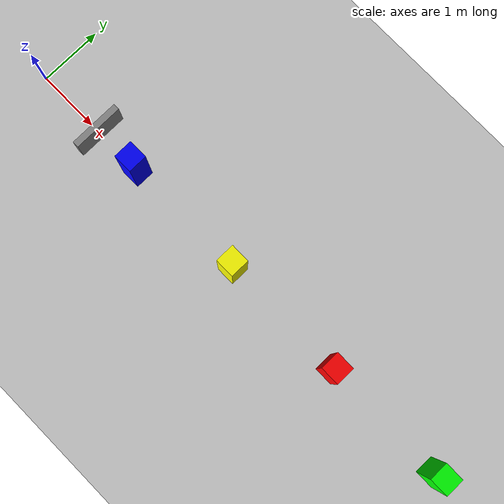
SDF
<?xml version="1.0" ?>
<sdf version="1.6">
  <world name="mvp_world">

    <include>
      <uri>model://ground_plane</uri>
    </include>

    <include>
      <uri>model://sun</uri>
    </include>

    <model name="left_sign">
      <static>true</static>
      <pose>2 0 0.5 0 0 0</pose>
      <link name="link">
        <visual name="visual">
          <geometry>
            <box>
              <size>0.3 0.3 1.0</size>
            </box>
          </geometry>
          <material>
            <ambient>0 0 1 1</ambient>
            <diffuse>0 0 1 1</diffuse>
          </material>
        </visual>
      </link>
    </model>

    <model name="right_sign">
      <static>true</static>
      <pose>4 0 0.5 0 0 0</pose>
      <link name="link">
        <visual name="visual">
          <geometry>
            <box>
              <size>0.3 0.3 1.0</size>
            </box>
          </geometry>
          <material>
            <ambient>1 1 0 1</ambient>
            <diffuse>1 1 0 1</diffuse>
          </material>
        </visual>
      </link>
    </model>

    <model name="stop_sign">
      <static>true</static>
      <pose>6 0 0.5 0 0 0</pose>
      <link name="link">
        <visual name="visual">
          <geometry>
            <box>
              <size>0.3 0.3 1.0</size>
            </box>
          </geometry>
          <material>
            <ambient>1 0 0 1</ambient>
            <diffuse>1 0 0 1</diffuse>
          </material>
        </visual>
      </link>
    </model>

    <model name="goal_sign">
      <static>true</static>
      <pose>8 0 0.5 0 0 0</pose>
      <link name="link">
        <visual name="visual">
          <geometry>
            <box>
              <size>0.3 0.3 1.0</size>
            </box>
          </geometry>
          <material>
            <ambient>0 1 0 1</ambient>
            <diffuse>0 1 0 1</diffuse>
          </material>
        </visual>
      </link>
    </model>

    <!-- Level 2 LiDAR emergency-stop obstacle -->
    <model name="level2_obstacle">
      <static>true</static>
      <pose>1.20 0 0.25 0 0 0</pose>
      <link name="link">
        <collision name="collision">
          <geometry>
            <box>
              <size>0.10 0.80 0.50</size>
            </box>
          </geometry>
        </collision>
        <visual name="visual">
          <geometry>
            <box>
              <size>0.10 0.80 0.50</size>
            </box>
          </geometry>
          <material>
            <ambient>0.35 0.35 0.35 1</ambient>
            <diffuse>0.55 0.55 0.55 1</diffuse>
          </material>
        </visual>
      </link>
    </model>

  </world>
</sdf>
